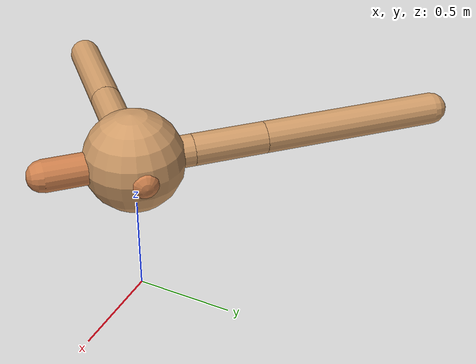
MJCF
<mujoco model="ant">
  <compiler angle="degree" coordinate="local" inertiafromgeom="true" />
  <option integrator="RK4" timestep="0.01" />
  <custom>
    <numeric data="0.0 0.0 0.55 1.0 0.0 0.0 0.0 0.0 1.0 0.0 -1.0 0.0 -1.0 0.0 1.0" name="init_qpos" />
  </custom>
  <default>
    <joint armature="1" damping="1" limited="true" />
    <geom conaffinity="0" condim="3" density="5.0" friction="1.5 0.1 0.1" margin="0.01" rgba="0.8 0.6 0.4 1" />
  </default>
  <worldbody>
    <body name="torso" pos="0 0 0.75">
      <geom name="torso_geom" pos="0 0 0" size="0.25" type="sphere" />

      <body name="front_left_leg" pos="0 0 0">
        <geom fromto="0.0 0.0 0.0 0.0177 0.0177 0.0" name="aux_1_geom" rgba=".8 .5 .3 1" size="0.08" type="capsule" />
        <body name="aux_1" pos="0.0177 0.0177 0.0">
          <joint axis="0 0 1" name="hip_1" pos="0.0 0.0 0.0" range="-40 40" type="hinge" />
          <geom fromto="0.0 0.0 0.0 -0.00861 -0.00861 0.0" name="left_leg_geom" rgba=".8 .5 .3 1" size="0.08" type="capsule" />
          <body name="front_left_foot" pos="-0.00861 -0.00861 0.0">
            <joint axis="-1 1 0" name="ankle_1" pos="0.0 0.0 0.0" range="30 100" type="hinge" />
            <geom fromto="0.0 0.0 0.0 0.127 0.127 0.0" name="left_ankle_geom" rgba=".8 .5 .3 1" size="0.08" type="capsule" />
          </body>
        </body>
      </body>
      <body name="front_right_leg" pos="0 0 0">
        <geom fromto="0.0 0.0 0.0 -0.205 0.205 0.0" name="aux_2_geom" size="0.08" type="capsule" />
        <body name="aux_2" pos="-0.205 0.205 0.0">
          <joint axis="0 0 1" name="hip_2" pos="0.0 0.0 0.0" range="-40 40" type="hinge" />
          <geom fromto="0.0 0.0 0.0 -0.261 0.261 0.0" name="right_leg_geom" size="0.08" type="capsule" />
          <body name="front_right_foot" pos="-0.261 0.261 0.0">
            <joint axis="1 1 0" name="ankle_2" pos="0.0 0.0 0.0" range="-100 -30" type="hinge" />
            <geom fromto="0.0 0.0 0.0 -0.64 0.64 0.0" name="right_ankle_geom" size="0.08" type="capsule" />
          </body>
        </body>
      </body>
      <body name="left_back_leg" pos="0 0 0">
        <geom fromto="0.0 0.0 0.0 -0.208 -0.208 0.0" name="aux_3_geom" size="0.08" type="capsule" />
        <body name="aux_3" pos="-0.208 -0.208 0.0">
          <joint axis="0 0 1" name="hip_3" pos="0.0 0.0 0.0" range="-40 40" type="hinge" />
          <geom fromto="0.0 0.0 0.0 -0.219 -0.219 0.0" name="back_leg_geom" size="0.08" type="capsule" />
          <body name="left_back_foot" pos="-0.219 -0.219 0.0">
            <joint axis="-1 1 0" name="ankle_3" pos="0.0 0.0 0.0" range="-100 -30" type="hinge" />
            <geom fromto="0.0 0.0 0.0 -0.385 -0.385 0.0" name="third_ankle_geom" size="0.08" type="capsule" />
          </body>
        </body>
      </body>
      <body name="right_back_leg" pos="0 0 0">
        <geom fromto="0.0 0.0 0.0 0.0554 -0.0554 0.0" name="aux_4_geom" rgba=".8 .5 .3 1" size="0.08" type="capsule" />
        <body name="aux_4" pos="0.0554 -0.0554 0.0">
          <joint axis="0 0 1" name="hip_4" pos="0.0 0.0 0.0" range="-40 40" type="hinge" />
          <geom fromto="0.0 0.0 0.0 0.104 -0.104 0.0" name="rightback_leg_geom" rgba=".8 .5 .3 1" size="0.08" type="capsule" />
          <body name="right_back_foot" pos="0.104 -0.104 0.0">
            <joint axis="1 1 0" name="ankle_4" pos="0.0 0.0 0.0" range="30 100" type="hinge" />
            <geom fromto="0.0 0.0 0.0 0.149 -0.149 0.0" name="fourth_ankle_geom" rgba=".8 .5 .3 1" size="0.08" type="capsule" />
          </body>
        </body>
      </body>
    </body>
  </worldbody>
  <actuator>
    <motor ctrllimited="true" ctrlrange="-1.0 1.0" gear="150" joint="hip_4" />
    <motor ctrllimited="true" ctrlrange="-1.0 1.0" gear="150" joint="ankle_4" />
    <motor ctrllimited="true" ctrlrange="-1.0 1.0" gear="150" joint="hip_1" />
    <motor ctrllimited="true" ctrlrange="-1.0 1.0" gear="150" joint="ankle_1" />
    <motor ctrllimited="true" ctrlrange="-1.0 1.0" gear="150" joint="hip_2" />
    <motor ctrllimited="true" ctrlrange="-1.0 1.0" gear="150" joint="ankle_2" />
    <motor ctrllimited="true" ctrlrange="-1.0 1.0" gear="150" joint="hip_3" />
    <motor ctrllimited="true" ctrlrange="-1.0 1.0" gear="150" joint="ankle_3" />
  </actuator>
</mujoco>
